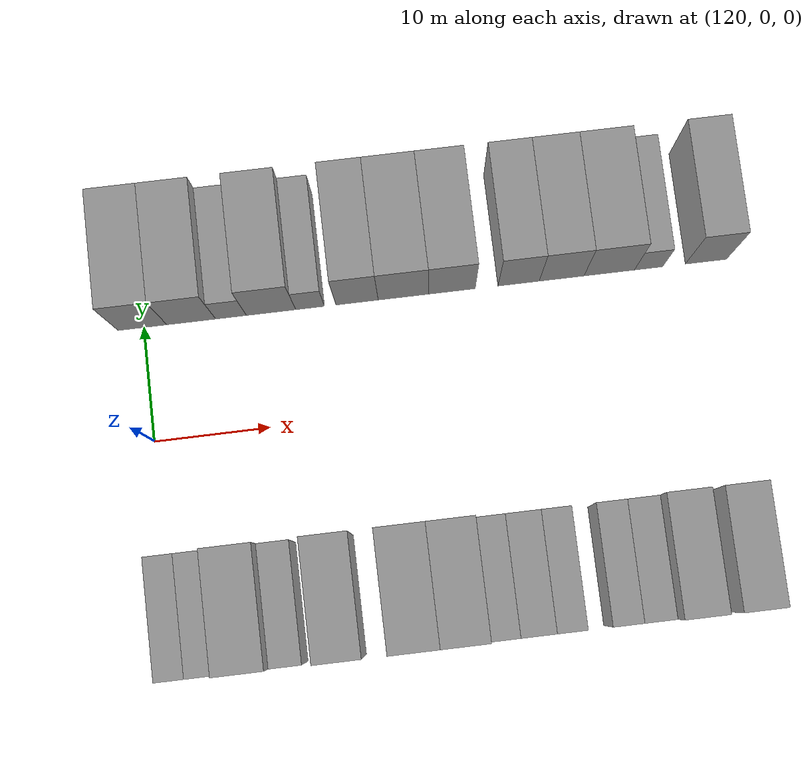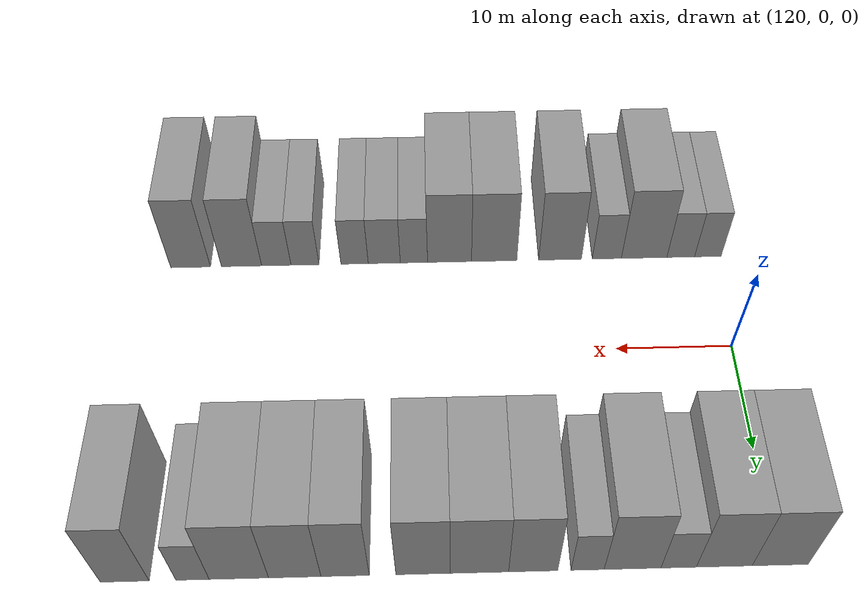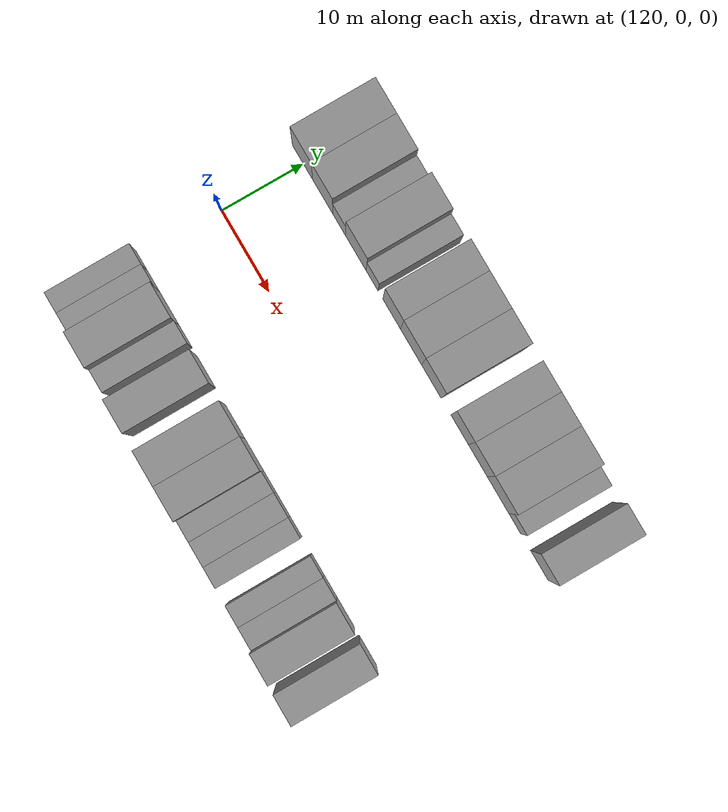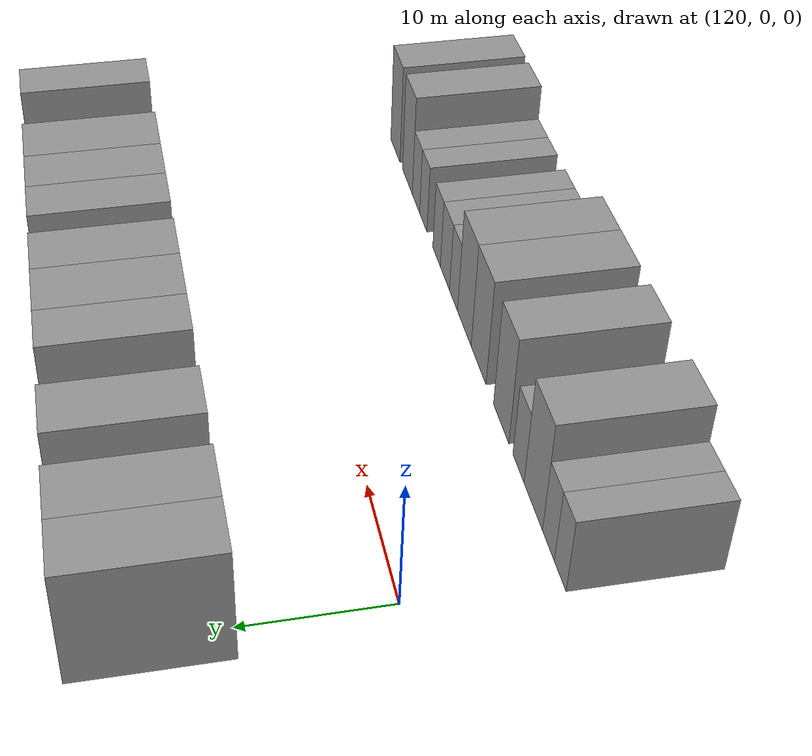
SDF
<sdf version="1.6">
 <world name="default">
  <model name="building_27">
   <static>1</static>
   <pose>119.8555 15.0000 0 0.000000 0.000000 1.570796</pose>
   <link name="link">
    <pose>0 0 4.50 0 0 0</pose>
    <collision name="collision"><geometry><box><size>10.0000 4.2542 9.0000</size></box></geometry></collision>
    <visual name="visual">
     <cast_shadows>0</cast_shadows>
     <geometry><box><size>10.0000 4.2542 9.0000</size></box></geometry>
     <material>
      <script>
       <uri>model://grey_wall/materials/scripts</uri>
       <uri>model://grey_wall/materials/textures</uri>
       <name>vrc/grey_wall</name>
      </script>
     </material>
    </visual>
   </link>
  </model>
  <model name="building_28">
   <static>1</static>
   <pose>124.1061 15.0000 0 0.000000 0.000000 1.570796</pose>
   <link name="link">
    <pose>0 0 4.50 0 0 0</pose>
    <collision name="collision"><geometry><box><size>10.0000 4.2471 9.0000</size></box></geometry></collision>
    <visual name="visual">
     <cast_shadows>0</cast_shadows>
     <geometry><box><size>10.0000 4.2471 9.0000</size></box></geometry>
     <material>
      <script>
       <uri>model://grey_wall/materials/scripts</uri>
       <uri>model://grey_wall/materials/textures</uri>
       <name>vrc/grey_wall</name>
      </script>
     </material>
    </visual>
   </link>
  </model>
  <model name="building_29">
   <static>1</static>
   <pose>127.5682 15.0000 0 0.000000 0.000000 1.570796</pose>
   <link name="link">
    <pose>0 0 3.00 0 0 0</pose>
    <collision name="collision"><geometry><box><size>10.0000 2.6771 6.0000</size></box></geometry></collision>
    <visual name="visual">
     <cast_shadows>0</cast_shadows>
     <geometry><box><size>10.0000 2.6771 6.0000</size></box></geometry>
     <material>
      <script>
       <uri>model://grey_wall/materials/scripts</uri>
       <uri>model://grey_wall/materials/textures</uri>
       <name>vrc/grey_wall</name>
      </script>
     </material>
    </visual>
   </link>
  </model>
  <model name="building_30">
   <static>1</static>
   <pose>131.0592 15.0000 0 0.000000 0.000000 1.570796</pose>
   <link name="link">
    <pose>0 0 4.50 0 0 0</pose>
    <collision name="collision"><geometry><box><size>10.0000 4.3049 9.0000</size></box></geometry></collision>
    <visual name="visual">
     <cast_shadows>0</cast_shadows>
     <geometry><box><size>10.0000 4.3049 9.0000</size></box></geometry>
     <material>
      <script>
       <uri>model://grey_wall/materials/scripts</uri>
       <uri>model://grey_wall/materials/textures</uri>
       <name>vrc/grey_wall</name>
      </script>
     </material>
    </visual>
   </link>
  </model>
  <model name="building_31">
   <static>1</static>
   <pose>134.4650 15.0000 0 0.000000 0.000000 1.570796</pose>
   <link name="link">
    <pose>0 0 3.00 0 0 0</pose>
    <collision name="collision"><geometry><box><size>10.0000 2.5067 6.0000</size></box></geometry></collision>
    <visual name="visual">
     <cast_shadows>0</cast_shadows>
     <geometry><box><size>10.0000 2.5067 6.0000</size></box></geometry>
     <material>
      <script>
       <uri>model://grey_wall/materials/scripts</uri>
       <uri>model://grey_wall/materials/textures</uri>
       <name>vrc/grey_wall</name>
      </script>
     </material>
    </visual>
   </link>
  </model>
  <model name="building_32">
   <static>1</static>
   <pose>138.5697 15.0000 0 0.000000 0.000000 1.570796</pose>
   <link name="link">
    <pose>0 0 4.50 0 0 0</pose>
    <collision name="collision"><geometry><box><size>10.0000 3.7027 9.0000</size></box></geometry></collision>
    <visual name="visual">
     <cast_shadows>0</cast_shadows>
     <geometry><box><size>10.0000 3.7027 9.0000</size></box></geometry>
     <material>
      <script>
       <uri>model://grey_wall/materials/scripts</uri>
       <uri>model://grey_wall/materials/textures</uri>
       <name>vrc/grey_wall</name>
      </script>
     </material>
    </visual>
   </link>
  </model>
  <model name="building_33">
   <static>1</static>
   <pose>142.6201 15.0000 0 0.000000 0.000000 1.570796</pose>
   <link name="link">
    <pose>0 0 4.50 0 0 0</pose>
    <collision name="collision"><geometry><box><size>10.0000 4.3982 9.0000</size></box></geometry></collision>
    <visual name="visual">
     <cast_shadows>0</cast_shadows>
     <geometry><box><size>10.0000 4.3982 9.0000</size></box></geometry>
     <material>
      <script>
       <uri>model://grey_wall/materials/scripts</uri>
       <uri>model://grey_wall/materials/textures</uri>
       <name>vrc/grey_wall</name>
      </script>
     </material>
    </visual>
   </link>
  </model>
  <model name="building_34">
   <static>1</static>
   <pose>146.8642 15.0000 0 0.000000 0.000000 1.570796</pose>
   <link name="link">
    <pose>0 0 4.50 0 0 0</pose>
    <collision name="collision"><geometry><box><size>10.0000 4.0901 9.0000</size></box></geometry></collision>
    <visual name="visual">
     <cast_shadows>0</cast_shadows>
     <geometry><box><size>10.0000 4.0901 9.0000</size></box></geometry>
     <material>
      <script>
       <uri>model://grey_wall/materials/scripts</uri>
       <uri>model://grey_wall/materials/textures</uri>
       <name>vrc/grey_wall</name>
      </script>
     </material>
    </visual>
   </link>
  </model>
  <model name="building_35">
   <static>1</static>
   <pose>152.7222 15.0000 0 0.000000 0.000000 1.570796</pose>
   <link name="link">
    <pose>0 0 4.50 0 0 0</pose>
    <collision name="collision"><geometry><box><size>10.0000 3.6258 9.0000</size></box></geometry></collision>
    <visual name="visual">
     <cast_shadows>0</cast_shadows>
     <geometry><box><size>10.0000 3.6258 9.0000</size></box></geometry>
     <material>
      <script>
       <uri>model://grey_wall/materials/scripts</uri>
       <uri>model://grey_wall/materials/textures</uri>
       <name>vrc/grey_wall</name>
      </script>
     </material>
    </visual>
   </link>
  </model>
  <model name="building_36">
   <static>1</static>
   <pose>156.4994 15.0000 0 0.000000 0.000000 1.570796</pose>
   <link name="link">
    <pose>0 0 4.50 0 0 0</pose>
    <collision name="collision"><geometry><box><size>10.0000 3.9287 9.0000</size></box></geometry></collision>
    <visual name="visual">
     <cast_shadows>0</cast_shadows>
     <geometry><box><size>10.0000 3.9287 9.0000</size></box></geometry>
     <material>
      <script>
       <uri>model://grey_wall/materials/scripts</uri>
       <uri>model://grey_wall/materials/textures</uri>
       <name>vrc/grey_wall</name>
      </script>
     </material>
    </visual>
   </link>
  </model>
  <model name="building_37">
   <static>1</static>
   <pose>160.6866 15.0000 0 0.000000 0.000000 1.570796</pose>
   <link name="link">
    <pose>0 0 4.50 0 0 0</pose>
    <collision name="collision"><geometry><box><size>10.0000 4.4457 9.0000</size></box></geometry></collision>
    <visual name="visual">
     <cast_shadows>0</cast_shadows>
     <geometry><box><size>10.0000 4.4457 9.0000</size></box></geometry>
     <material>
      <script>
       <uri>model://grey_wall/materials/scripts</uri>
       <uri>model://grey_wall/materials/textures</uri>
       <name>vrc/grey_wall</name>
      </script>
     </material>
    </visual>
   </link>
  </model>
  <model name="building_38">
   <static>1</static>
   <pose>164.1530 15.0000 0 0.000000 0.000000 1.570796</pose>
   <link name="link">
    <pose>0 0 3.00 0 0 0</pose>
    <collision name="collision"><geometry><box><size>10.0000 2.4872 6.0000</size></box></geometry></collision>
    <visual name="visual">
     <cast_shadows>0</cast_shadows>
     <geometry><box><size>10.0000 2.4872 6.0000</size></box></geometry>
     <material>
      <script>
       <uri>model://grey_wall/materials/scripts</uri>
       <uri>model://grey_wall/materials/textures</uri>
       <name>vrc/grey_wall</name>
      </script>
     </material>
    </visual>
   </link>
  </model>
  <model name="building_39">
   <static>1</static>
   <pose>169.2162 15.0000 0 0.000000 0.000000 1.570796</pose>
   <link name="link">
    <pose>0 0 4.50 0 0 0</pose>
    <collision name="collision"><geometry><box><size>10.0000 3.6392 9.0000</size></box></geometry></collision>
    <visual name="visual">
     <cast_shadows>0</cast_shadows>
     <geometry><box><size>10.0000 3.6392 9.0000</size></box></geometry>
     <material>
      <script>
       <uri>model://grey_wall/materials/scripts</uri>
       <uri>model://grey_wall/materials/textures</uri>
       <name>vrc/grey_wall</name>
      </script>
     </material>
    </visual>
   </link>
  </model>
  <model name="building_82">
   <static>1</static>
   <pose>120.4411 -15.0000 0 0.000000 0.000000 1.570796</pose>
   <link name="link">
    <pose>0 0 3.00 0 0 0</pose>
    <collision name="collision"><geometry><box><size>10.0000 2.4455 6.0000</size></box></geometry></collision>
    <visual name="visual">
     <cast_shadows>0</cast_shadows>
     <geometry><box><size>10.0000 2.4455 6.0000</size></box></geometry>
     <material>
      <script>
       <uri>model://grey_wall/materials/scripts</uri>
       <uri>model://grey_wall/materials/textures</uri>
       <name>vrc/grey_wall</name>
      </script>
     </material>
    </visual>
   </link>
  </model>
  <model name="building_83">
   <static>1</static>
   <pose>122.9377 -15.0000 0 0.000000 0.000000 1.570796</pose>
   <link name="link">
    <pose>0 0 3.00 0 0 0</pose>
    <collision name="collision"><geometry><box><size>10.0000 2.5479 6.0000</size></box></geometry></collision>
    <visual name="visual">
     <cast_shadows>0</cast_shadows>
     <geometry><box><size>10.0000 2.5479 6.0000</size></box></geometry>
     <material>
      <script>
       <uri>model://grey_wall/materials/scripts</uri>
       <uri>model://grey_wall/materials/textures</uri>
       <name>vrc/grey_wall</name>
      </script>
     </material>
    </visual>
   </link>
  </model>
  <model name="building_84">
   <static>1</static>
   <pose>126.3077 -15.0000 0 0.000000 0.000000 1.570796</pose>
   <link name="link">
    <pose>0 0 4.50 0 0 0</pose>
    <collision name="collision"><geometry><box><size>10.0000 4.1920 9.0000</size></box></geometry></collision>
    <visual name="visual">
     <cast_shadows>0</cast_shadows>
     <geometry><box><size>10.0000 4.1920 9.0000</size></box></geometry>
     <material>
      <script>
       <uri>model://grey_wall/materials/scripts</uri>
       <uri>model://grey_wall/materials/textures</uri>
       <name>vrc/grey_wall</name>
      </script>
     </material>
    </visual>
   </link>
  </model>
  <model name="building_85">
   <static>1</static>
   <pose>129.7392 -15.0000 0 0.000000 0.000000 1.570796</pose>
   <link name="link">
    <pose>0 0 3.00 0 0 0</pose>
    <collision name="collision"><geometry><box><size>10.0000 2.6710 6.0000</size></box></geometry></collision>
    <visual name="visual">
     <cast_shadows>0</cast_shadows>
     <geometry><box><size>10.0000 2.6710 6.0000</size></box></geometry>
     <material>
      <script>
       <uri>model://grey_wall/materials/scripts</uri>
       <uri>model://grey_wall/materials/textures</uri>
       <name>vrc/grey_wall</name>
      </script>
     </material>
    </visual>
   </link>
  </model>
  <model name="building_86">
   <static>1</static>
   <pose>134.0358 -15.0000 0 0.000000 0.000000 1.570796</pose>
   <link name="link">
    <pose>0 0 4.50 0 0 0</pose>
    <collision name="collision"><geometry><box><size>10.0000 3.9222 9.0000</size></box></geometry></collision>
    <visual name="visual">
     <cast_shadows>0</cast_shadows>
     <geometry><box><size>10.0000 3.9222 9.0000</size></box></geometry>
     <material>
      <script>
       <uri>model://grey_wall/materials/scripts</uri>
       <uri>model://grey_wall/materials/textures</uri>
       <name>vrc/grey_wall</name>
      </script>
     </material>
    </visual>
   </link>
  </model>
  <model name="building_87">
   <static>1</static>
   <pose>140.0731 -15.0000 0 0.000000 0.000000 1.570796</pose>
   <link name="link">
    <pose>0 0 4.50 0 0 0</pose>
    <collision name="collision"><geometry><box><size>10.0000 4.1524 9.0000</size></box></geometry></collision>
    <visual name="visual">
     <cast_shadows>0</cast_shadows>
     <geometry><box><size>10.0000 4.1524 9.0000</size></box></geometry>
     <material>
      <script>
       <uri>model://grey_wall/materials/scripts</uri>
       <uri>model://grey_wall/materials/textures</uri>
       <name>vrc/grey_wall</name>
      </script>
     </material>
    </visual>
   </link>
  </model>
  <model name="building_88">
   <static>1</static>
   <pose>144.1564 -15.0000 0 0.000000 0.000000 1.570796</pose>
   <link name="link">
    <pose>0 0 4.50 0 0 0</pose>
    <collision name="collision"><geometry><box><size>10.0000 4.0142 9.0000</size></box></geometry></collision>
    <visual name="visual">
     <cast_shadows>0</cast_shadows>
     <geometry><box><size>10.0000 4.0142 9.0000</size></box></geometry>
     <material>
      <script>
       <uri>model://grey_wall/materials/scripts</uri>
       <uri>model://grey_wall/materials/textures</uri>
       <name>vrc/grey_wall</name>
      </script>
     </material>
    </visual>
   </link>
  </model>
  <model name="building_89">
   <static>1</static>
   <pose>147.4107 -15.0000 0 0.000000 0.000000 1.570796</pose>
   <link name="link">
    <pose>0 0 3.00 0 0 0</pose>
    <collision name="collision"><geometry><box><size>10.0000 2.4943 6.0000</size></box></geometry></collision>
    <visual name="visual">
     <cast_shadows>0</cast_shadows>
     <geometry><box><size>10.0000 2.4943 6.0000</size></box></geometry>
     <material>
      <script>
       <uri>model://grey_wall/materials/scripts</uri>
       <uri>model://grey_wall/materials/textures</uri>
       <name>vrc/grey_wall</name>
      </script>
     </material>
    </visual>
   </link>
  </model>
  <model name="building_90">
   <static>1</static>
   <pose>150.1211 -15.0000 0 0.000000 0.000000 1.570796</pose>
   <link name="link">
    <pose>0 0 3.00 0 0 0</pose>
    <collision name="collision"><geometry><box><size>10.0000 2.9267 6.0000</size></box></geometry></collision>
    <visual name="visual">
     <cast_shadows>0</cast_shadows>
     <geometry><box><size>10.0000 2.9267 6.0000</size></box></geometry>
     <material>
      <script>
       <uri>model://grey_wall/materials/scripts</uri>
       <uri>model://grey_wall/materials/textures</uri>
       <name>vrc/grey_wall</name>
      </script>
     </material>
    </visual>
   </link>
  </model>
  <model name="building_91">
   <static>1</static>
   <pose>152.8282 -15.0000 0 0.000000 0.000000 1.570796</pose>
   <link name="link">
    <pose>0 0 3.00 0 0 0</pose>
    <collision name="collision"><geometry><box><size>10.0000 2.4874 6.0000</size></box></geometry></collision>
    <visual name="visual">
     <cast_shadows>0</cast_shadows>
     <geometry><box><size>10.0000 2.4874 6.0000</size></box></geometry>
     <material>
      <script>
       <uri>model://grey_wall/materials/scripts</uri>
       <uri>model://grey_wall/materials/textures</uri>
       <name>vrc/grey_wall</name>
      </script>
     </material>
    </visual>
   </link>
  </model>
  <model name="building_92">
   <static>1</static>
   <pose>157.3483 -15.0000 0 0.000000 0.000000 1.570796</pose>
   <link name="link">
    <pose>0 0 3.00 0 0 0</pose>
    <collision name="collision"><geometry><box><size>10.0000 2.5528 6.0000</size></box></geometry></collision>
    <visual name="visual">
     <cast_shadows>0</cast_shadows>
     <geometry><box><size>10.0000 2.5528 6.0000</size></box></geometry>
     <material>
      <script>
       <uri>model://grey_wall/materials/scripts</uri>
       <uri>model://grey_wall/materials/textures</uri>
       <name>vrc/grey_wall</name>
      </script>
     </material>
    </visual>
   </link>
  </model>
  <model name="building_93">
   <static>1</static>
   <pose>159.9591 -15.0000 0 0.000000 0.000000 1.570796</pose>
   <link name="link">
    <pose>0 0 3.00 0 0 0</pose>
    <collision name="collision"><geometry><box><size>10.0000 2.6688 6.0000</size></box></geometry></collision>
    <visual name="visual">
     <cast_shadows>0</cast_shadows>
     <geometry><box><size>10.0000 2.6688 6.0000</size></box></geometry>
     <material>
      <script>
       <uri>model://grey_wall/materials/scripts</uri>
       <uri>model://grey_wall/materials/textures</uri>
       <name>vrc/grey_wall</name>
      </script>
     </material>
    </visual>
   </link>
  </model>
  <model name="building_94">
   <static>1</static>
   <pose>163.1216 -15.0000 0 0.000000 0.000000 1.570796</pose>
   <link name="link">
    <pose>0 0 4.50 0 0 0</pose>
    <collision name="collision"><geometry><box><size>10.0000 3.6561 9.0000</size></box></geometry></collision>
    <visual name="visual">
     <cast_shadows>0</cast_shadows>
     <geometry><box><size>10.0000 3.6561 9.0000</size></box></geometry>
     <material>
      <script>
       <uri>model://grey_wall/materials/scripts</uri>
       <uri>model://grey_wall/materials/textures</uri>
       <name>vrc/grey_wall</name>
      </script>
     </material>
    </visual>
   </link>
  </model>
  <model name="building_95">
   <static>1</static>
   <pose>167.7519 -15.0000 0 0.000000 0.000000 1.570796</pose>
   <link name="link">
    <pose>0 0 4.50 0 0 0</pose>
    <collision name="collision"><geometry><box><size>10.0000 3.6045 9.0000</size></box></geometry></collision>
    <visual name="visual">
     <cast_shadows>0</cast_shadows>
     <geometry><box><size>10.0000 3.6045 9.0000</size></box></geometry>
     <material>
      <script>
       <uri>model://grey_wall/materials/scripts</uri>
       <uri>model://grey_wall/materials/textures</uri>
       <name>vrc/grey_wall</name>
      </script>
     </material>
    </visual>
   </link>
  </model>
 </world>
</sdf>
